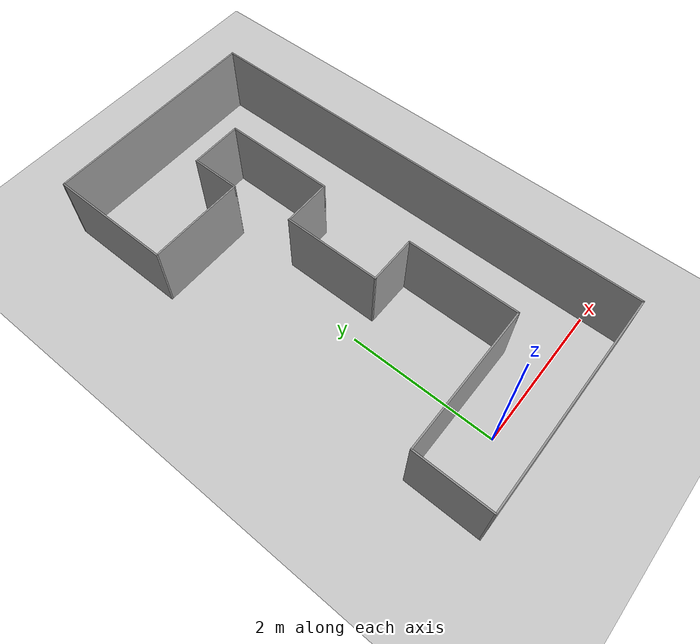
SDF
<sdf version="1.7">
 <world name="default">
  <light name="sun" type="directional">
   <pose>0 0 10 0 -0 0</pose>
   <diffuse>0.8 0.8 0.8 1</diffuse>
   <specular>0.2 0.2 0.2 1</specular>
   <attenuation>
    <range>1000</range>
    <constant>0.9</constant>
    <linear>0.01</linear>
    <quadratic>0.001</quadratic>
   </attenuation>
   <direction>-0.5 0.1 -0.9</direction>
   <spot><inner_angle>0</inner_angle><outer_angle>0</outer_angle><falloff>0</falloff></spot>
  </light>
  <model name="ground_plane">
   <static>1</static>
   <link name="link">
    <collision name="collision">
     <geometry><plane><normal>0 0 1</normal><size>100 100</size></plane></geometry>
     <surface><friction><ode><mu>100</mu><mu2>50</mu2></ode></friction></surface>
    </collision>
    <visual name="visual">
     <cast_shadows>0</cast_shadows>
     <geometry><plane><normal>0 0 1</normal><size>100 100</size></plane></geometry>
     <material>
      <script><uri>file://media/materials/scripts/gazebo.material</uri><name>Gazebo/Grey</name></script>
     </material>
    </visual>
   </link>
  </model>
  <gravity>0 0 -9.8</gravity>
  <magnetic_field>6e-06 2.3e-05 -4.2e-05</magnetic_field>
  <atmosphere type="adiabatic"/>
  <physics type="ode">
   <max_step_size>0.001</max_step_size>
   <real_time_factor>1</real_time_factor>
   <real_time_update_rate>1000</real_time_update_rate>
  </physics>
  <scene><ambient>0.4 0.4 0.4 1</ambient><background>0.7 0.7 0.7 1</background><shadows>1</shadows></scene>
  <audio><device>default</device></audio>
  <spherical_coordinates>
   <surface_model>EARTH_WGS84</surface_model>
   <latitude_deg>0</latitude_deg>
   <longitude_deg>0</longitude_deg>
   <elevation>0</elevation>
   <heading_deg>0</heading_deg>
  </spherical_coordinates>
  <model name="headingfixedcbf">
   <pose>0.5 2.65 0 0 -0 0</pose>
   <link name="Wall_106">
    <collision name="Wall_106_Collision">
     <geometry><box><size>3.02 0.02 1</size></box></geometry>
     <pose>0 0 0.5 0 -0 0</pose>
    </collision>
    <visual name="Wall_106_Visual">
     <pose>0 0 0.5 0 -0 0</pose>
     <geometry><box><size>3.02 0.02 1</size></box></geometry>
     <material>
      <script><uri>file://media/materials/scripts/gazebo.material</uri><name>Gazebo/Grey</name></script>
      <ambient>1 1 1 1</ambient>
     </material>
     <meta><layer>0</layer></meta>
    </visual>
    <pose>-0 -3.15 0 0 -0 0</pose>
   </link>
   <link name="Wall_108">
    <collision name="Wall_108_Collision">
     <geometry><box><size>1.02 0.02 1</size></box></geometry>
     <pose>0 0 0.5 0 -0 0</pose>
    </collision>
    <visual name="Wall_108_Visual">
     <pose>0 0 0.5 0 -0 0</pose>
     <geometry><box><size>1.02 0.02 1</size></box></geometry>
     <material>
      <script><uri>file://media/materials/scripts/gazebo.material</uri><name>Gazebo/Grey</name></script>
      <ambient>1 1 1 1</ambient>
     </material>
     <meta><layer>0</layer></meta>
    </visual>
    <pose>-1.5 -2.65 0 0 -0 1.5708</pose>
   </link>
   <link name="Wall_110">
    <collision name="Wall_110_Collision">
     <geometry><box><size>2.02 0.02 1</size></box></geometry>
     <pose>0 0 0.5 0 -0 0</pose>
    </collision>
    <visual name="Wall_110_Visual">
     <pose>0 0 0.5 0 -0 0</pose>
     <geometry><box><size>2.02 0.02 1</size></box></geometry>
     <material>
      <script><uri>file://media/materials/scripts/gazebo.material</uri><name>Gazebo/Grey</name></script>
      <ambient>1 1 1 1</ambient>
     </material>
     <meta><layer>0</layer></meta>
    </visual>
    <pose>-0.5 -2.15 0 0 -0 0</pose>
   </link>
   <link name="Wall_112">
    <collision name="Wall_112_Collision">
     <geometry><box><size>1.52 0.02 1</size></box></geometry>
     <pose>0 0 0.5 0 -0 0</pose>
    </collision>
    <visual name="Wall_112_Visual">
     <pose>0 0 0.5 0 -0 0</pose>
     <geometry><box><size>1.52 0.02 1</size></box></geometry>
     <material>
      <script><uri>file://media/materials/scripts/gazebo.material</uri><name>Gazebo/Grey</name></script>
      <ambient>1 1 1 1</ambient>
     </material>
     <meta><layer>0</layer></meta>
    </visual>
    <pose>0.5 -1.4 0 0 -0 1.5708</pose>
   </link>
   <link name="Wall_114">
    <collision name="Wall_114_Collision">
     <geometry><box><size>0.67 0.02 1</size></box></geometry>
     <pose>0 0 0.5 0 -0 0</pose>
    </collision>
    <visual name="Wall_114_Visual">
     <pose>0 0 0.5 0 -0 0</pose>
     <geometry><box><size>0.67 0.02 1</size></box></geometry>
     <material>
      <script><uri>file://media/materials/scripts/gazebo.material</uri><name>Gazebo/Grey</name></script>
      <ambient>1 1 1 1</ambient>
     </material>
     <meta><layer>0</layer></meta>
    </visual>
    <pose>0.175 -0.65 0 0 -0 3.14159</pose>
   </link>
   <link name="Wall_116">
    <collision name="Wall_116_Collision">
     <geometry><box><size>1.32 0.02 1</size></box></geometry>
     <pose>0 0 0.5 0 -0 0</pose>
    </collision>
    <visual name="Wall_116_Visual">
     <pose>0 0 0.5 0 -0 0</pose>
     <geometry><box><size>1.32 0.02 1</size></box></geometry>
     <material>
      <script><uri>file://media/materials/scripts/gazebo.material</uri><name>Gazebo/Grey</name></script>
      <ambient>1 1 1 1</ambient>
     </material>
     <meta><layer>0</layer></meta>
    </visual>
    <pose>-0.15 0 0 0 -0 1.5708</pose>
   </link>
   <link name="Wall_118">
    <collision name="Wall_118_Collision">
     <geometry><box><size>0.67 0.02 1</size></box></geometry>
     <pose>0 0 0.5 0 -0 0</pose>
    </collision>
    <visual name="Wall_118_Visual">
     <pose>0 0 0.5 0 -0 0</pose>
     <geometry><box><size>0.67 0.02 1</size></box></geometry>
     <material>
      <script><uri>file://media/materials/scripts/gazebo.material</uri><name>Gazebo/Grey</name></script>
      <ambient>1 1 1 1</ambient>
     </material>
     <meta><layer>0</layer></meta>
    </visual>
    <pose>0.175 0.65 0 0 -0 0</pose>
   </link>
   <link name="Wall_120">
    <collision name="Wall_120_Collision">
     <geometry><box><size>1.52 0.02 1</size></box></geometry>
     <pose>0 0 0.5 0 -0 0</pose>
    </collision>
    <visual name="Wall_120_Visual">
     <pose>0 0 0.5 0 -0 0</pose>
     <geometry><box><size>1.52 0.02 1</size></box></geometry>
     <material>
      <script><uri>file://media/materials/scripts/gazebo.material</uri><name>Gazebo/Grey</name></script>
      <ambient>1 1 1 1</ambient>
     </material>
     <meta><layer>0</layer></meta>
    </visual>
    <pose>0.5 1.4 0 0 -0 1.5708</pose>
   </link>
   <link name="Wall_124">
    <collision name="Wall_124_Collision">
     <geometry><box><size>6.32 0.02 1</size></box></geometry>
     <pose>0 0 0.5 0 -0 0</pose>
    </collision>
    <visual name="Wall_124_Visual">
     <pose>0 0 0.5 0 -0 0</pose>
     <geometry><box><size>6.32 0.02 1</size></box></geometry>
     <material>
      <script><uri>file://media/materials/scripts/gazebo.material</uri><name>Gazebo/Grey</name></script>
      <ambient>1 1 1 1</ambient>
     </material>
     <meta><layer>0</layer></meta>
    </visual>
    <pose>1.5 0 0 0 -0 1.5708</pose>
   </link>
   <link name="Wall_126">
    <collision name="Wall_126_Collision">
     <geometry><box><size>3.02 0.02 1</size></box></geometry>
     <pose>0 0 0.5 0 -0 0</pose>
    </collision>
    <visual name="Wall_126_Visual">
     <pose>0 0 0.5 0 -0 0</pose>
     <geometry><box><size>3.02 0.02 1</size></box></geometry>
     <material>
      <script><uri>file://media/materials/scripts/gazebo.material</uri><name>Gazebo/Grey</name></script>
      <ambient>1 1 1 1</ambient>
     </material>
     <meta><layer>0</layer></meta>
    </visual>
    <pose>-0 3.15 0 0 -0 3.14159</pose>
   </link>
   <link name="Wall_129">
    <collision name="Wall_129_Collision">
     <geometry><box><size>1.67 0.02 1</size></box></geometry>
     <pose>0 0 0.5 0 -0 0</pose>
    </collision>
    <visual name="Wall_129_Visual">
     <pose>0 0 0.5 0 -0 0</pose>
     <geometry><box><size>1.67 0.02 1</size></box></geometry>
     <material>
      <script><uri>file://media/materials/scripts/gazebo.material</uri><name>Gazebo/Grey</name></script>
      <ambient>1 1 1 1</ambient>
     </material>
     <meta><layer>0</layer></meta>
    </visual>
    <pose>-1.5 2.325 0 0 -0 -1.5708</pose>
   </link>
   <link name="Wall_131">
    <collision name="Wall_131_Collision">
     <geometry><box><size>1.32 0.02 1</size></box></geometry>
     <pose>0 0 0.5 0 -0 0</pose>
    </collision>
    <visual name="Wall_131_Visual">
     <pose>0 0 0.5 0 -0 0</pose>
     <geometry><box><size>1.32 0.02 1</size></box></geometry>
     <material>
      <script><uri>file://media/materials/scripts/gazebo.material</uri><name>Gazebo/Grey</name></script>
      <ambient>1 1 1 1</ambient>
     </material>
     <meta><layer>0</layer></meta>
    </visual>
    <pose>-0.85 1.5 0 0 -0 0</pose>
   </link>
   <link name="Wall_133">
    <collision name="Wall_133_Collision">
     <geometry><box><size>0.67 0.02 1</size></box></geometry>
     <pose>0 0 0.5 0 -0 0</pose>
    </collision>
    <visual name="Wall_133_Visual">
     <pose>0 0 0.5 0 -0 0</pose>
     <geometry><box><size>0.67 0.02 1</size></box></geometry>
     <material>
      <script><uri>file://media/materials/scripts/gazebo.material</uri><name>Gazebo/Grey</name></script>
      <ambient>1 1 1 1</ambient>
     </material>
     <meta><layer>0</layer></meta>
    </visual>
    <pose>-0.2 1.825 0 0 -0 1.5708</pose>
   </link>
   <link name="Wall_135">
    <collision name="Wall_135_Collision">
     <geometry><box><size>0.72 0.02 1</size></box></geometry>
     <pose>0 0 0.5 0 -0 0</pose>
    </collision>
    <visual name="Wall_135_Visual">
     <pose>0 0 0.5 0 -0 0</pose>
     <geometry><box><size>0.72 0.02 1</size></box></geometry>
     <material>
      <script><uri>file://media/materials/scripts/gazebo.material</uri><name>Gazebo/Grey</name></script>
      <ambient>1 1 1 1</ambient>
     </material>
     <meta><layer>0</layer></meta>
    </visual>
    <pose>0.15 2.15 0 0 -0 0</pose>
   </link>
   <static>1</static>
  </model>
 </world>
</sdf>
